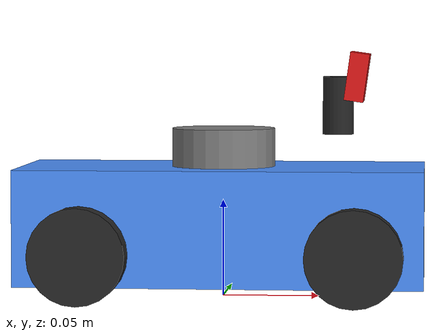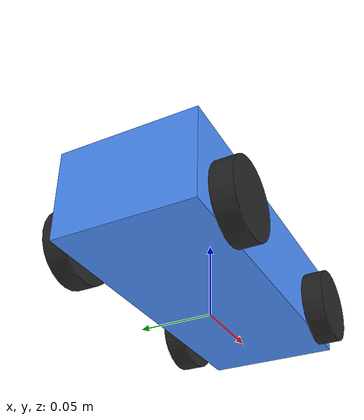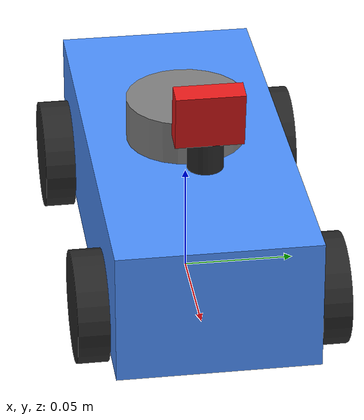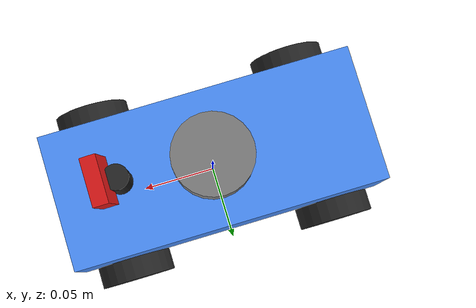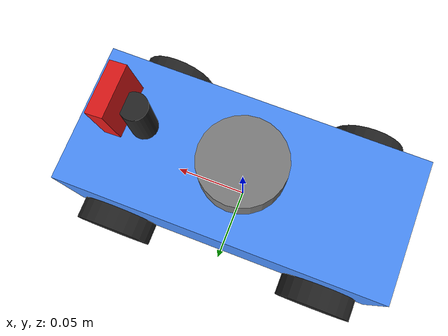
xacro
<?xml version="1.0"?>
<robot xmlns:xacro="http://www.ros.org/wiki/xacro" name="lazyBot">

    <xacro:property name="length"        value="0.210" />  <!-- bumper to bumper -->
    <xacro:property name="width"         value="0.120" />  <!-- across the tyres -->
    <xacro:property name="body_width"    value="0.090" />  <!-- the box between the wheels -->
    <xacro:property name="body_height"   value="0.060" />
    <xacro:property name="ground_offset" value="0.008" />  <!-- underside to floor -->

    <xacro:property name="wheel_radius"  value="0.025" />  <!-- 50 mm diameter -->
    <xacro:property name="wheel_width"   value="0.014" />

    <!-- Wheel centre to wheel centre, so the tyres just reach `width`. -->
    <xacro:property name="track"         value="${width - wheel_width}" />

    <xacro:property name="wheelbase"     value="0.140" />

    <!-- Steering knuckle inboard offset: how far the kingpin sits from
         the wheel centre plane. Only affects the Ackermann split. -->
    <xacro:property name="hinge_inset"   value="0.012" />

    <!-- Physical steering lock, one side. bot.max_steer_deg. -->
    <xacro:property name="max_steer_deg" value="60.0" />
    <xacro:property name="max_steer"     value="${radians(max_steer_deg)}" />

    <xacro:property name="lidar_x"       value="0.0" />    <!-- bot.lidar.forward_offset_m -->
    <xacro:property name="lidar_yaw"     value="0.0" />    <!-- bot.lidar.yaw_deg -->
    <xacro:property name="lidar_height"  value="0.020" />
    <xacro:property name="lidar_radius"  value="0.027" />  <!-- RPLIDAR C1 body -->

    <xacro:property name="imu_x"         value="-0.060" /> <!-- BNO055 sits at the rear -->
    <xacro:property name="imu_size"      value="0.020" />

    <!-- USB camera on the pan servo, looking forward and slightly down. -->
    <xacro:property name="camera_x"      value="0.060" />
    <xacro:property name="camera_z"      value="0.115" />
    <xacro:property name="camera_pitch"  value="${radians(8.0)}" />

    <xacro:property name="base_mass"     value="0.800" />
    <xacro:property name="wheel_mass"    value="0.030" />
    <xacro:property name="hinge_mass"    value="0.010" />
    <xacro:property name="laser_mass"    value="0.050" />
    <xacro:property name="imu_mass"      value="0.005" />

    <xacro:property name="model_name"    value="lazyBot" />

    <xacro:include filename="lazyBotCore.xacro" />
    <xacro:include filename="lidar.xacro" />
    <xacro:include filename="IMU.xacro" />
    <xacro:include filename="camera.xacro" />
    <xacro:include filename="control.xacro" />
    <xacro:include filename="gazebo.xacro" />

</robot>

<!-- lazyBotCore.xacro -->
<robot xmlns:xacro="http://www.ros.org/wiki/xacro" name="lazyBot">

    <material name="black"><color rgba="0.15 0.15 0.15 1.0" /></material>
    <material name="blue"><color rgba="0.30 0.57 1.00 1.0" /></material>
    <material name="red"><color rgba="0.90 0.10 0.10 1.0" /></material>
    <material name="grey"><color rgba="0.50 0.50 0.50 1.0" /></material>

    <!-- ══ Wheel macro ════════════════════════════════════════════════
         `flip` is +1 for the left wheels and -1 for the right, so both
         sides end up spinning positive-for-forward. -->
    <xacro:macro name="wheel_link" params="name">
        <link name="${name}">
            <visual>
                <geometry>
                    <cylinder radius="${wheel_radius}" length="${wheel_width}" />
                </geometry>
                <material name="black" />
            </visual>
            <collision>
                <geometry>
                    <cylinder radius="${wheel_radius}" length="${wheel_width}" />
                </geometry>
            </collision>
            <inertial>
                <mass value="${wheel_mass}" />
                <inertia
                    ixx="${(wheel_mass/12)*(3*wheel_radius*wheel_radius + wheel_width*wheel_width)}"
                    iyy="${(wheel_mass/12)*(3*wheel_radius*wheel_radius + wheel_width*wheel_width)}"
                    izz="${(wheel_mass/2)*wheel_radius*wheel_radius}"
                    ixy="0" ixz="0" iyz="0" />
            </inertial>
        </link>
    </xacro:macro>

    <xacro:macro name="steer_hinge_link" params="name">
        <link name="${name}">
            <inertial>
                <mass value="${hinge_mass}" />
                <inertia ixx="1e-5" iyy="1e-5" izz="1e-5" ixy="0" ixz="0" iyz="0" />
            </inertial>
        </link>
    </xacro:macro>

    <link name="base_link">
        <visual>
            <origin xyz="0 0 ${ground_offset + body_height/2}" />
            <geometry>
                <box size="${length} ${body_width} ${body_height}" />
            </geometry>
            <material name="blue" />
        </visual>
        <collision>
            <origin xyz="0 0 ${ground_offset + body_height/2}" />
            <geometry>
                <box size="${length} ${body_width} ${body_height}" />
            </geometry>
        </collision>
        <inertial>
            <origin xyz="0 0 ${ground_offset + body_height/4}" />
            <mass value="${base_mass}" />
            <inertia
                ixx="${(base_mass/12)*(body_width*body_width + body_height*body_height)}"
                iyy="${(base_mass/12)*(length*length + body_height*body_height)}"
                izz="${(base_mass/12)*(length*length + body_width*body_width)}"
                ixy="0" ixz="0" iyz="0" />
        </inertial>
    </link>

    <joint name="base_to_back_left_wheel" type="continuous">
        <parent link="base_link" />
        <child link="back_left_wheel" />
        <origin xyz="${-wheelbase/2} ${track/2} ${wheel_radius}" rpy="${-pi/2} 0 0" />
        <axis xyz="0 0 1" />
        <dynamics damping="0.001" friction="0.001" />
    </joint>
    <xacro:wheel_link name="back_left_wheel" />

    <joint name="base_to_back_right_wheel" type="continuous">
        <parent link="base_link" />
        <child link="back_right_wheel" />
        <origin xyz="${-wheelbase/2} ${-track/2} ${wheel_radius}" rpy="${pi/2} 0 0" />
        <axis xyz="0 0 -1" />
        <dynamics damping="0.001" friction="0.001" />
    </joint>
    <xacro:wheel_link name="back_right_wheel" />

    <joint name="base_to_front_left_hinge" type="revolute">
        <parent link="base_link" />
        <child link="front_left_hinge" />
        <origin xyz="${wheelbase/2} ${track/2 - hinge_inset} ${wheel_radius}" />
        <axis xyz="0 0 1" />
        <limit lower="${-max_steer}" upper="${max_steer}" effort="100" velocity="12" />
        <dynamics damping="0.01" friction="0.01" />
    </joint>
    <xacro:steer_hinge_link name="front_left_hinge" />

    <joint name="front_left_hinge_to_wheel" type="continuous">
        <parent link="front_left_hinge" />
        <child link="front_left_wheel" />
        <origin xyz="0 ${hinge_inset} 0" rpy="${-pi/2} 0 0" />
        <axis xyz="0 0 1" />
        <dynamics damping="0.001" friction="0.001" />
    </joint>
    <xacro:wheel_link name="front_left_wheel" />

    <joint name="base_to_front_right_hinge" type="revolute">
        <parent link="base_link" />
        <child link="front_right_hinge" />
        <origin xyz="${wheelbase/2} ${-(track/2 - hinge_inset)} ${wheel_radius}" />
        <axis xyz="0 0 1" />
        <limit lower="${-max_steer}" upper="${max_steer}" effort="100" velocity="12" />
        <dynamics damping="0.01" friction="0.01" />
    </joint>
    <xacro:steer_hinge_link name="front_right_hinge" />

    <joint name="front_right_hinge_to_wheel" type="continuous">
        <parent link="front_right_hinge" />
        <child link="front_right_wheel" />
        <origin xyz="0 ${-hinge_inset} 0" rpy="${pi/2} 0 0" />
        <axis xyz="0 0 -1" />
        <dynamics damping="0.001" friction="0.001" />
    </joint>
    <xacro:wheel_link name="front_right_wheel" />

</robot>

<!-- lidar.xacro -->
<robot xmlns:xacro="http://www.ros.org/wiki/xacro" name="lazyBot">

    <!-- bot.lidar.forward_offset_m = 0.0 and yaw_deg = 0.0, so the unit
         sits over base_link with its 0° ray pointing straight ahead. -->
    <joint name="base_to_laser" type="fixed">
        <parent link="base_link" />
        <child link="laser" />
        <origin xyz="${lidar_x} 0 ${ground_offset + body_height + lidar_height/2}"
                rpy="0 0 ${lidar_yaw}" />
    </joint>

    <link name="laser">
        <visual>
            <geometry>
                <cylinder radius="${lidar_radius}" length="${lidar_height}" />
            </geometry>
            <material name="grey" />
        </visual>
        <collision>
            <geometry>
                <cylinder radius="${lidar_radius}" length="${lidar_height}" />
            </geometry>
        </collision>
        <inertial>
            <mass value="${laser_mass}" />
            <inertia
                ixx="${(laser_mass/12)*(3*lidar_radius*lidar_radius + lidar_height*lidar_height)}"
                iyy="${(laser_mass/12)*(3*lidar_radius*lidar_radius + lidar_height*lidar_height)}"
                izz="${(laser_mass/2)*lidar_radius*lidar_radius}"
                ixy="0" ixz="0" iyz="0" />
        </inertial>
    </link>

    <gazebo reference="laser">
        <!-- Keep `laser` as a real link in the converted SDF instead of
             letting sdformat fold it into base_link, so the sensor frame
             and the TF frame carry the same name. -->
        <disableFixedJointLumping>true</disableFixedJointLumping>

        <sensor name="lidar" type="gpu_lidar">
            <topic>scan</topic>
            <ignition_frame_id>laser</ignition_frame_id>
            <update_rate>10</update_rate>
            <always_on>1</always_on>
            <visualize>true</visualize>
            <lidar>
                <scan>
                    <horizontal>
                        <samples>720</samples>
                        <resolution>1</resolution>
                        <min_angle>${-pi}</min_angle>
                        <max_angle>${pi}</max_angle>
                    </horizontal>
                    <vertical>
                        <samples>1</samples>
                        <resolution>1</resolution>
                        <min_angle>0</min_angle>
                        <max_angle>0</max_angle>
                    </vertical>
                </scan>
                <range>
                    <min>0.05</min>
                    <max>12.0</max>
                    <resolution>0.01</resolution>
                </range>
                <noise>
                    <type>gaussian</type>
                    <mean>0.0</mean>
                    <stddev>0.01</stddev>
                </noise>
            </lidar>
        </sensor>
    </gazebo>
</robot>

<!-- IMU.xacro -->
<robot xmlns:xacro="http://www.ros.org/wiki/xacro" name="lazyBot">

    <joint name="base_to_imu" type="fixed">
        <parent link="base_link" />
        <child link="imu_link" />
        <origin xyz="${imu_x} 0 ${ground_offset + body_height/2}" />
    </joint>

    <link name="imu_link">
        <visual>
            <geometry>
                <box size="${imu_size} ${imu_size} ${imu_size/2}" />
            </geometry>
            <material name="black" />
        </visual>
        <inertial>
            <mass value="${imu_mass}" />
            <inertia ixx="1e-6" iyy="1e-6" izz="1e-6" ixy="0" ixz="0" iyz="0" />
        </inertial>
    </link>

    <gazebo reference="imu_link">
        <disableFixedJointLumping>true</disableFixedJointLumping>

        <sensor name="imu" type="imu">
            <topic>imu</topic>
            <ignition_frame_id>imu_link</ignition_frame_id>
            <update_rate>50</update_rate>
            <always_on>1</always_on>
            <visualize>false</visualize>
            <imu>
                <angular_velocity>
                    <x><noise type="gaussian"><mean>0.0</mean><stddev>0.001</stddev></noise></x>
                    <y><noise type="gaussian"><mean>0.0</mean><stddev>0.001</stddev></noise></y>
                    <z><noise type="gaussian"><mean>0.0</mean><stddev>0.001</stddev></noise></z>
                </angular_velocity>
                <linear_acceleration>
                    <x><noise type="gaussian"><mean>0.0</mean><stddev>0.01</stddev></noise></x>
                    <y><noise type="gaussian"><mean>0.0</mean><stddev>0.01</stddev></noise></y>
                    <z><noise type="gaussian"><mean>0.0</mean><stddev>0.01</stddev></noise></z>
                </linear_acceleration>
            </imu>
        </sensor>
    </gazebo>
</robot>

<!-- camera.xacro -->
<robot xmlns:xacro="http://www.ros.org/wiki/xacro" name="lazyBot">

    <!-- Pan servo. Driven through /cam_servo (std_msgs/Int8, degrees)
         exactly like the old bridge, and physically limited to ±90°. -->
    <joint name="chassis_to_cam_servo" type="revolute">
        <parent link="base_link" />
        <child link="cam_servo_link" />
        <origin xyz="${camera_x} 0 ${camera_z}" />
        <axis xyz="0 0 1" />
        <limit lower="${-pi/2}" upper="${pi/2}" effort="5" velocity="10" />
        <dynamics damping="0.01" friction="0.01" />
    </joint>

    <link name="cam_servo_link">
        <visual>
            <origin xyz="0 0 -0.015" />
            <geometry>
                <cylinder radius="0.008" length="0.030" />
            </geometry>
            <material name="black" />
        </visual>
        <inertial>
            <mass value="${hinge_mass}" />
            <inertia ixx="1e-6" iyy="1e-6" izz="1e-6" ixy="0" ixz="0" iyz="0" />
        </inertial>
    </link>

    <!-- Tilted down a few degrees so the pillar bases stay in frame at
         close range; vision_params crops the top 40% of the image away
         (roi_top_crop) which assumes roughly this framing. -->
    <joint name="camera_joint" type="fixed">
        <parent link="cam_servo_link" />
        <child link="camera_link" />
        <origin xyz="0.010 0 0" rpy="0 ${camera_pitch} 0" />
    </joint>

    <link name="camera_link">
        <visual>
            <geometry>
                <box size="0.010 0.030 0.025" />
            </geometry>
            <material name="red" />
        </visual>
        <inertial>
            <mass value="0.020" />
            <inertia ixx="1e-6" iyy="1e-6" izz="1e-6" ixy="0" ixz="0" iyz="0" />
        </inertial>
    </link>

    <joint name="camera_optical_joint" type="fixed">
        <parent link="camera_link" />
        <child link="camera_link_optical" />
        <origin xyz="0 0 0" rpy="${-pi/2} 0 ${-pi/2}" />
    </joint>

    <link name="camera_link_optical" />

    <gazebo reference="camera_link">
        <disableFixedJointLumping>true</disableFixedJointLumping>

        <sensor name="camera" type="camera">
            <topic>camera/image_raw</topic>
            <ignition_frame_id>camera_link_optical</ignition_frame_id>
            <update_rate>30</update_rate>
            <always_on>1</always_on>
            <visualize>false</visualize>
            <camera>
                <horizontal_fov>${radians(60.0)}</horizontal_fov>
                <image>
                    <width>640</width>
                    <height>480</height>
                    <format>R8G8B8</format>
                </image>
                <clip>
                    <near>0.02</near>
                    <far>10.0</far>
                </clip>
                <noise>
                    <type>gaussian</type>
                    <mean>0.0</mean>
                    <stddev>0.005</stddev>
                </noise>
            </camera>
        </sensor>
    </gazebo>
</robot>
